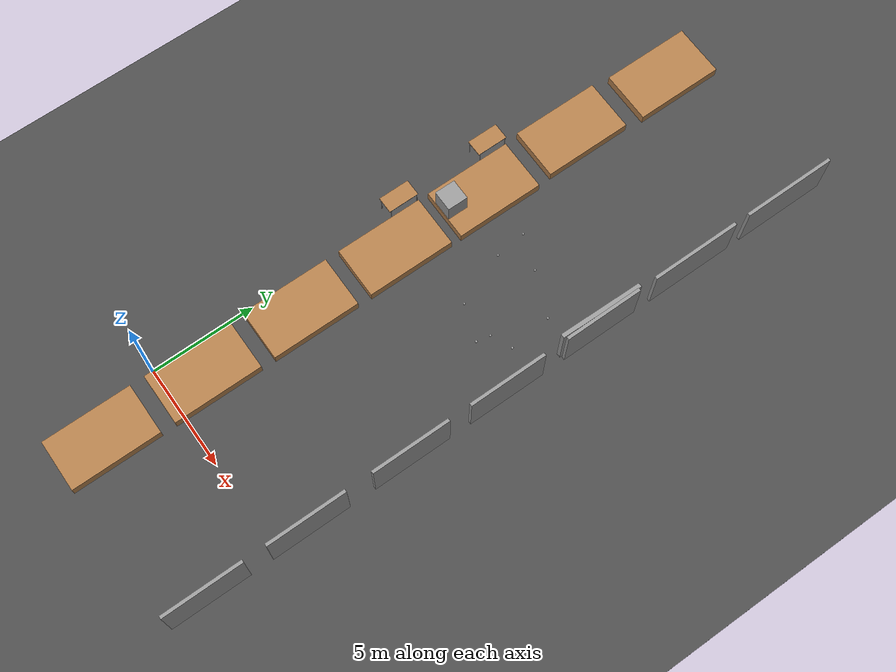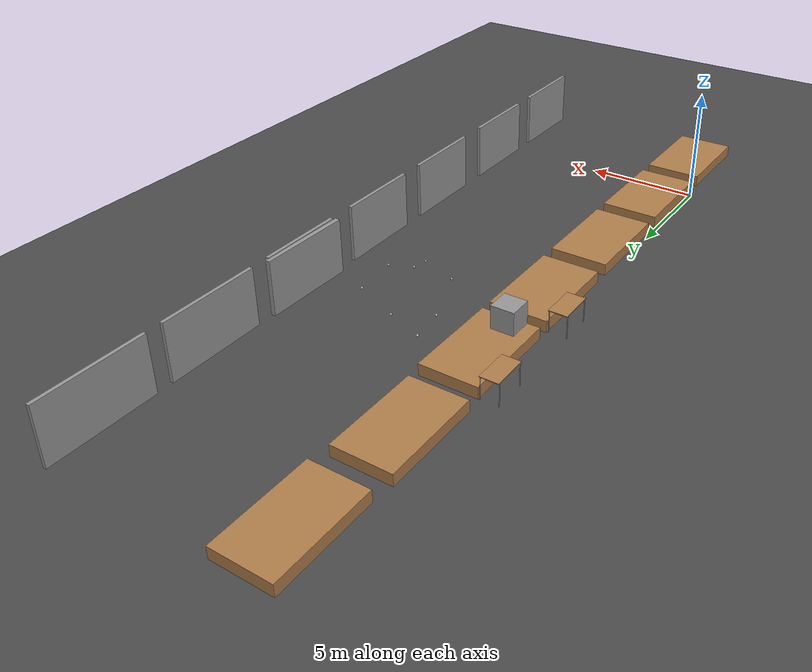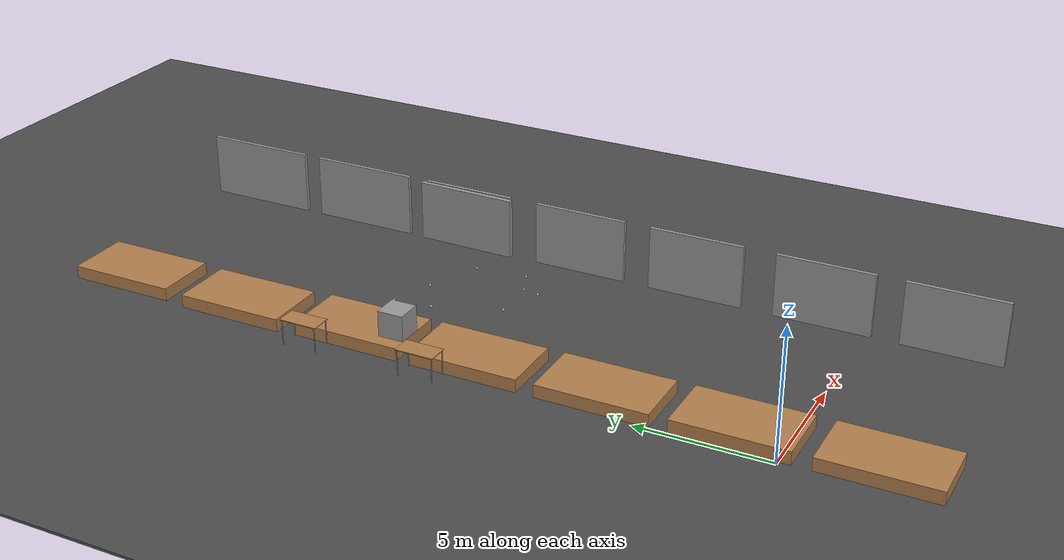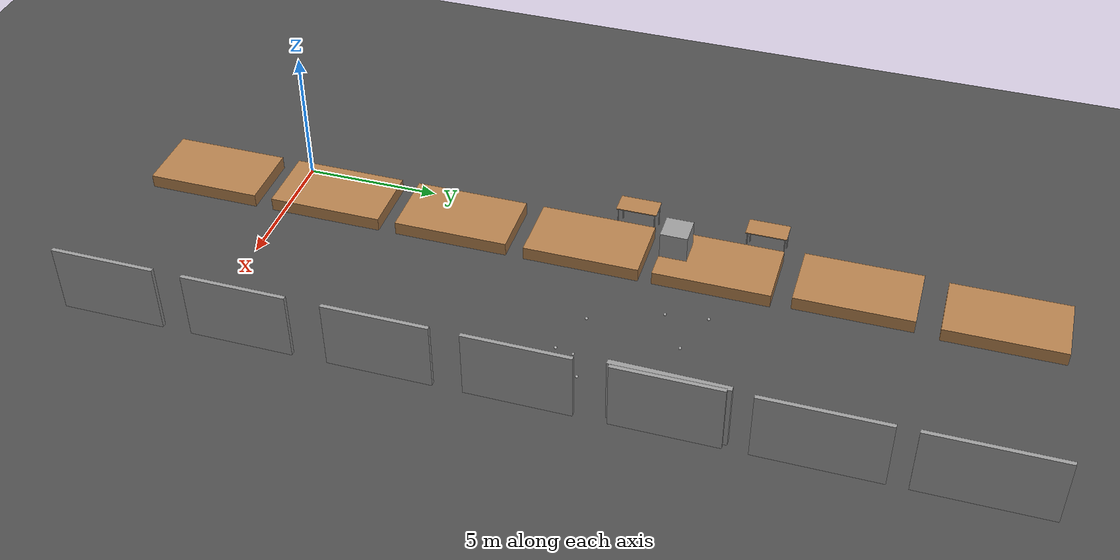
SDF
<sdf version="1.6">
 <world name="default">
  <model name="table_clone_clone_1">
   <static>1</static>
   <link name="link">
    <collision name="surface">
     <pose>0 0 1 0 -0 0</pose>
     <geometry><box><size>1.5 0.8 0.03</size></box></geometry>
     <surface><friction><ode><mu>0.6</mu><mu2>0.6</mu2></ode></friction></surface>
    </collision>
    <visual name="visual1">
     <pose>0 0 1 0 -0 0</pose>
     <geometry><box><size>1.5 0.8 0.03</size></box></geometry>
     <material>
      <script><uri>file://media/materials/scripts/gazebo.material</uri><name>Gazebo/Wood</name></script>
     </material>
    </visual>
    <collision name="front_left_leg">
     <pose>0.68 0.38 0.5 0 -0 0</pose>
     <geometry><cylinder><radius>0.02</radius><length>1</length></cylinder></geometry>
    </collision>
    <visual name="front_left_leg">
     <pose>0.68 0.38 0.5 0 -0 0</pose>
     <geometry><cylinder><radius>0.02</radius><length>1</length></cylinder></geometry>
     <material>
      <script><uri>file://media/materials/scripts/gazebo.material</uri><name>Gazebo/Grey</name></script>
     </material>
    </visual>
    <collision name="front_right_leg">
     <pose>0.68 -0.38 0.5 0 -0 0</pose>
     <geometry><cylinder><radius>0.02</radius><length>1</length></cylinder></geometry>
    </collision>
    <visual name="front_right_leg">
     <pose>0.68 -0.38 0.5 0 -0 0</pose>
     <geometry><cylinder><radius>0.02</radius><length>1</length></cylinder></geometry>
     <material>
      <script><uri>file://media/materials/scripts/gazebo.material</uri><name>Gazebo/Grey</name></script>
     </material>
    </visual>
    <collision name="back_right_leg">
     <pose>-0.68 -0.38 0.5 0 -0 0</pose>
     <geometry><cylinder><radius>0.02</radius><length>1</length></cylinder></geometry>
    </collision>
    <visual name="back_right_leg">
     <pose>-0.68 -0.38 0.5 0 -0 0</pose>
     <geometry><cylinder><radius>0.02</radius><length>1</length></cylinder></geometry>
     <material>
      <script><uri>file://media/materials/scripts/gazebo.material</uri><name>Gazebo/Grey</name></script>
     </material>
    </visual>
    <collision name="back_left_leg">
     <pose>-0.68 0.38 0.5 0 -0 0</pose>
     <geometry><cylinder><radius>0.02</radius><length>1</length></cylinder></geometry>
    </collision>
    <visual name="back_left_leg">
     <pose>-0.68 0.38 0.5 0 -0 0</pose>
     <geometry><cylinder><radius>0.02</radius><length>1</length></cylinder></geometry>
     <material>
      <script><uri>file://media/materials/scripts/gazebo.material</uri><name>Gazebo/Grey</name></script>
     </material>
    </visual>
   </link>
   <pose>-0.283344 12.903 0 0 0 -1.56764</pose>
  </model>
  <model name="table_clone_clone_2">
   <static>1</static>
   <link name="link">
    <collision name="surface">
     <pose>0 0 1 0 -0 0</pose>
     <geometry><box><size>1.5 0.8 0.03</size></box></geometry>
     <surface><friction><ode><mu>0.6</mu><mu2>0.6</mu2></ode></friction></surface>
    </collision>
    <visual name="visual1">
     <pose>0 0 1 0 -0 0</pose>
     <geometry><box><size>1.5 0.8 0.03</size></box></geometry>
     <material>
      <script><uri>file://media/materials/scripts/gazebo.material</uri><name>Gazebo/Wood</name></script>
     </material>
    </visual>
    <collision name="front_left_leg">
     <pose>0.68 0.38 0.5 0 -0 0</pose>
     <geometry><cylinder><radius>0.02</radius><length>1</length></cylinder></geometry>
    </collision>
    <visual name="front_left_leg">
     <pose>0.68 0.38 0.5 0 -0 0</pose>
     <geometry><cylinder><radius>0.02</radius><length>1</length></cylinder></geometry>
     <material>
      <script><uri>file://media/materials/scripts/gazebo.material</uri><name>Gazebo/Grey</name></script>
     </material>
    </visual>
    <collision name="front_right_leg">
     <pose>0.68 -0.38 0.5 0 -0 0</pose>
     <geometry><cylinder><radius>0.02</radius><length>1</length></cylinder></geometry>
    </collision>
    <visual name="front_right_leg">
     <pose>0.68 -0.38 0.5 0 -0 0</pose>
     <geometry><cylinder><radius>0.02</radius><length>1</length></cylinder></geometry>
     <material>
      <script><uri>file://media/materials/scripts/gazebo.material</uri><name>Gazebo/Grey</name></script>
     </material>
    </visual>
    <collision name="back_right_leg">
     <pose>-0.68 -0.38 0.5 0 -0 0</pose>
     <geometry><cylinder><radius>0.02</radius><length>1</length></cylinder></geometry>
    </collision>
    <visual name="back_right_leg">
     <pose>-0.68 -0.38 0.5 0 -0 0</pose>
     <geometry><cylinder><radius>0.02</radius><length>1</length></cylinder></geometry>
     <material>
      <script><uri>file://media/materials/scripts/gazebo.material</uri><name>Gazebo/Grey</name></script>
     </material>
    </visual>
    <collision name="back_left_leg">
     <pose>-0.68 0.38 0.5 0 -0 0</pose>
     <geometry><cylinder><radius>0.02</radius><length>1</length></cylinder></geometry>
    </collision>
    <visual name="back_left_leg">
     <pose>-0.68 0.38 0.5 0 -0 0</pose>
     <geometry><cylinder><radius>0.02</radius><length>1</length></cylinder></geometry>
     <material>
      <script><uri>file://media/materials/scripts/gazebo.material</uri><name>Gazebo/Grey</name></script>
     </material>
    </visual>
   </link>
   <pose>-0.282545 17.6818 0 0 0 -1.56764</pose>
  </model>
  <model name="screen">
   <pose>9.6 11.7963 0 0 -0 0</pose>
   <link name="Wall_0">
    <collision name="Wall_0_Collision">
     <geometry><box><size>3.75 0.15 2.5</size></box></geometry>
     <pose>0 0 1.25 0 -0 0</pose>
    </collision>
    <visual name="Wall_0_Visual">
     <pose>0 0 1.25 0 -0 0</pose>
     <geometry><box><size>3.75 0.15 2.5</size></box></geometry>
     <material>
      <script><uri>file://media/materials/scripts/gazebo.material</uri><name>Gazebo/Grey</name></script>
      <ambient>1 1 1 1</ambient>
     </material>
     <meta><layer>0</layer></meta>
    </visual>
    <pose>0 -14.926 0 0 -0 -1.5708</pose>
   </link>
   <link name="Wall_11">
    <collision name="Wall_11_Collision">
     <geometry><box><size>4.3 0.15 2.5</size></box></geometry>
     <pose>0 0 1.25 0 -0 0</pose>
    </collision>
    <visual name="Wall_11_Visual">
     <pose>0 0 1.25 0 -0 0</pose>
     <geometry><box><size>4.3 0.15 2.5</size></box></geometry>
     <material>
      <script><uri>file://media/materials/scripts/gazebo.material</uri><name>Gazebo/Grey</name></script>
      <ambient>1 1 1 1</ambient>
     </material>
     <meta><layer>0</layer></meta>
    </visual>
    <pose>0 9.451 0 0 -0 1.5708</pose>
   </link>
   <link name="Wall_13">
    <collision name="Wall_13_Collision">
     <geometry><box><size>4.5 0.15 2.5</size></box></geometry>
     <pose>0 0 1.25 0 -0 0</pose>
    </collision>
    <visual name="Wall_13_Visual">
     <pose>0 0 1.25 0 -0 0</pose>
     <geometry><box><size>4.5 0.15 2.5</size></box></geometry>
     <material>
      <script><uri>file://media/materials/scripts/gazebo.material</uri><name>Gazebo/Grey</name></script>
      <ambient>1 1 1 1</ambient>
     </material>
     <meta><layer>0</layer></meta>
    </visual>
    <pose>0 14.551 0 0 -0 1.5708</pose>
   </link>
   <link name="Wall_2">
    <collision name="Wall_2_Collision">
     <geometry><box><size>3.75 0.15 2.5</size></box></geometry>
     <pose>0 0 1.25 0 -0 0</pose>
    </collision>
    <visual name="Wall_2_Visual">
     <pose>0 0 1.25 0 -0 0</pose>
     <geometry><box><size>3.75 0.15 2.5</size></box></geometry>
     <material>
      <script><uri>file://media/materials/scripts/gazebo.material</uri><name>Gazebo/Grey</name></script>
      <ambient>1 1 1 1</ambient>
     </material>
     <meta><layer>0</layer></meta>
    </visual>
    <pose>0 -10.129 0 0 -0 -1.5708</pose>
   </link>
   <link name="Wall_4">
    <collision name="Wall_4_Collision">
     <geometry><box><size>3.75 0.15 2.5</size></box></geometry>
     <pose>0 0 1.25 0 -0 0</pose>
    </collision>
    <visual name="Wall_4_Visual">
     <pose>0 0 1.25 0 -0 0</pose>
     <geometry><box><size>3.75 0.15 2.5</size></box></geometry>
     <material>
      <script><uri>file://media/materials/scripts/gazebo.material</uri><name>Gazebo/Grey</name></script>
      <ambient>1 1 1 1</ambient>
     </material>
     <meta><layer>0</layer></meta>
    </visual>
    <pose>0 -5.126 0 0 -0 1.5708</pose>
   </link>
   <link name="Wall_6">
    <collision name="Wall_6_Collision">
     <geometry><box><size>3.75 0.15 2.5</size></box></geometry>
     <pose>0 0 1.25 0 -0 0</pose>
    </collision>
    <visual name="Wall_6_Visual">
     <pose>0 0 1.25 0 -0 0</pose>
     <geometry><box><size>3.75 0.15 2.5</size></box></geometry>
     <material>
      <script><uri>file://media/materials/scripts/gazebo.material</uri><name>Gazebo/Grey</name></script>
      <ambient>1 1 1 1</ambient>
     </material>
     <meta><layer>0</layer></meta>
    </visual>
    <pose>0 -0.324 0 0 -0 1.5708</pose>
   </link>
   <link name="Wall_9">
    <collision name="Wall_9_Collision">
     <geometry><box><size>3.75 0.15 2.5</size></box></geometry>
     <pose>0 0 1.25 0 -0 0</pose>
    </collision>
    <visual name="Wall_9_Visual">
     <pose>0 0 1.25 0 -0 0</pose>
     <geometry><box><size>3.75 0.15 2.5</size></box></geometry>
     <material>
      <script><uri>file://media/materials/scripts/gazebo.material</uri><name>Gazebo/Grey</name></script>
      <ambient>1 1 1 1</ambient>
     </material>
     <meta><layer>0</layer></meta>
    </visual>
    <pose>0 4.576 0 0 -0 1.5708</pose>
   </link>
   <static>1</static>
  </model>
  <model name="grey_wall_clone_0">
   <static>1</static>
   <link name="link">
    <pose>0 0 1.4 0 -0 0</pose>
    <collision name="collision"><geometry><box><size>4 0.2 2.4</size></box></geometry></collision>
    <visual name="visual">
     <cast_shadows>0</cast_shadows>
     <geometry><box><size>4 0.2 2.4</size></box></geometry>
     <material>
      <script>
       <uri>model://grey_wall/materials/scripts</uri>
       <uri>model://grey_wall/materials/textures</uri>
       <name>vrc/grey_wall</name>
      </script>
     </material>
    </visual>
   </link>
   <pose>9.4203 16.393 -0.13155 0 0 -1.58718</pose>
  </model>
  <model name="unit_box_3">
   <pose>1.18793 14.6668 1 0 -0 0.000345</pose>
   <link name="link">
    <inertial>
     <mass>1</mass>
     <inertia>
      <ixx>0.166667</ixx>
      <ixy>0</ixy>
      <ixz>0</ixz>
      <iyy>0.166667</iyy>
      <iyz>0</iyz>
      <izz>0.166667</izz>
     </inertia>
    </inertial>
    <collision name="collision"><geometry><box><size>1 1 1</size></box></geometry></collision>
    <visual name="visual">
     <geometry><box><size>1 1 1</size></box></geometry>
     <material>
      <script><name>Gazebo/Grey</name><uri>file://media/materials/scripts/gazebo.material</uri></script>
     </material>
    </visual>
   </link>
  </model>
  <model name="cut_floor_wood">
   <pose>1.33828 11.5505 0 0 -0 0</pose>
   <link name="Wall_0">
    <collision name="Wall_0_Collision">
     <geometry><box><size>4.25 2.5 0.5</size></box></geometry>
     <pose>0 0 0.25 0 -0 0</pose>
    </collision>
    <visual name="Wall_0_Visual">
     <pose>0 0 0.25 0 -0 0</pose>
     <geometry><box><size>4.25 2.5 0.5</size></box></geometry>
     <material>
      <script><uri>file://media/materials/scripts/gazebo.material</uri><name>Gazebo/Wood</name></script>
      <ambient>1 1 1 1</ambient>
     </material>
     <meta><layer>0</layer></meta>
    </visual>
    <pose>0.0645 -14.794 0 0 -0 1.5708</pose>
   </link>
   <link name="Wall_10">
    <collision name="Wall_10_Collision">
     <geometry><box><size>4.25 2.5 0.5</size></box></geometry>
     <pose>0 0 0.25 0 -0 0</pose>
    </collision>
    <visual name="Wall_10_Visual">
     <pose>0 0 0.25 0 -0 0</pose>
     <geometry><box><size>4.25 2.5 0.5</size></box></geometry>
     <material>
      <script><uri>file://media/materials/scripts/gazebo.material</uri><name>Gazebo/Wood</name></script>
      <ambient>1 1 1 1</ambient>
     </material>
     <meta><layer>0</layer></meta>
    </visual>
    <pose>-0.0645 9.688 0 0 -0 1.5708</pose>
   </link>
   <link name="Wall_12">
    <collision name="Wall_12_Collision">
     <geometry><box><size>4.25 2.5 0.5</size></box></geometry>
     <pose>0 0 0.25 0 -0 0</pose>
    </collision>
    <visual name="Wall_12_Visual">
     <pose>0 0 0.25 0 -0 0</pose>
     <geometry><box><size>4.25 2.5 0.5</size></box></geometry>
     <material>
      <script><uri>file://media/materials/scripts/gazebo.material</uri><name>Gazebo/Wood</name></script>
      <ambient>1 1 1 1</ambient>
     </material>
     <meta><layer>0</layer></meta>
    </visual>
    <pose>0.0645 14.794 0 0 -0 1.5708</pose>
   </link>
   <link name="Wall_2">
    <collision name="Wall_2_Collision">
     <geometry><box><size>4.25 2.5 0.5</size></box></geometry>
     <pose>0 0 0.25 0 -0 0</pose>
    </collision>
    <visual name="Wall_2_Visual">
     <pose>0 0 0.25 0 -0 0</pose>
     <geometry><box><size>4.25 2.5 0.5</size></box></geometry>
     <material>
      <script><uri>file://media/materials/scripts/gazebo.material</uri><name>Gazebo/Wood</name></script>
      <ambient>1 1 1 1</ambient>
     </material>
     <meta><layer>0</layer></meta>
    </visual>
    <pose>0.0645 -9.862 0 0 -0 1.5708</pose>
   </link>
   <link name="Wall_4">
    <collision name="Wall_4_Collision">
     <geometry><box><size>4.25 2.5 0.5</size></box></geometry>
     <pose>0 0 0.25 0 -0 0</pose>
    </collision>
    <visual name="Wall_4_Visual">
     <pose>0 0 0.25 0 -0 0</pose>
     <geometry><box><size>4.25 2.5 0.5</size></box></geometry>
     <material>
      <script><uri>file://media/materials/scripts/gazebo.material</uri><name>Gazebo/Wood</name></script>
      <ambient>1 1 1 1</ambient>
     </material>
     <meta><layer>0</layer></meta>
    </visual>
    <pose>0.0645 -4.945 0 0 -0 1.5708</pose>
   </link>
   <link name="Wall_6">
    <collision name="Wall_6_Collision">
     <geometry><box><size>4.25 2.5 0.5</size></box></geometry>
     <pose>0 0 0.25 0 -0 0</pose>
    </collision>
    <visual name="Wall_6_Visual">
     <pose>0 0 0.25 0 -0 0</pose>
     <geometry><box><size>4.25 2.5 0.5</size></box></geometry>
     <material>
      <script><uri>file://media/materials/scripts/gazebo.material</uri><name>Gazebo/Wood</name></script>
      <ambient>1 1 1 1</ambient>
     </material>
     <meta><layer>0</layer></meta>
    </visual>
    <pose>0.0645 -0.027 0 0 -0 1.5708</pose>
   </link>
   <link name="Wall_8">
    <collision name="Wall_8_Collision">
     <geometry><box><size>4.25 2.5 0.5</size></box></geometry>
     <pose>0 0 0.25 0 -0 0</pose>
    </collision>
    <visual name="Wall_8_Visual">
     <pose>0 0 0.25 0 -0 0</pose>
     <geometry><box><size>4.25 2.5 0.5</size></box></geometry>
     <material>
      <script><uri>file://media/materials/scripts/gazebo.material</uri><name>Gazebo/Wood</name></script>
      <ambient>1 1 1 1</ambient>
     </material>
     <meta><layer>0</layer></meta>
    </visual>
    <pose>0.0645 4.72 0 0 -0 1.5708</pose>
   </link>
   <static>1</static>
  </model>
  <model name="frc2016_ball_clone_0">
   <pose>7.7929 15.0352 0.0998 0 -0 0</pose>
   <link name="link">
    <inertial>
     <mass>0.213</mass>
     <inertia>
      <ixx>0.00322667</ixx>
      <ixy>0</ixy>
      <ixz>0</ixz>
      <iyy>0.00322667</iyy>
      <iyz>0</iyz>
      <izz>0.00322667</izz>
     </inertia>
    </inertial>
    <visual name="visual"><geometry><sphere><radius>0.0506132</radius></sphere></geometry></visual>
    <collision name="collision">
     <geometry><sphere><radius>0.0506132</radius></sphere></geometry>
     <surface>
      <bounce><restitution_coefficient>0.15937</restitution_coefficient><threshold>0</threshold></bounce>
      <contact><ode><max_vel>100</max_vel><min_depth>0.001</min_depth></ode></contact>
     </surface>
    </collision>
   </link>
  </model>
  <model name="frc2016_ball_clone_4_clone_37">
   <pose>6.87322 11.921 0.0998 0 -0 0</pose>
   <link name="link">
    <inertial>
     <mass>0.213</mass>
     <inertia>
      <ixx>0.00322667</ixx>
      <ixy>0</ixy>
      <ixz>0</ixz>
      <iyy>0.00322667</iyy>
      <iyz>0</iyz>
      <izz>0.00322667</izz>
     </inertia>
    </inertial>
    <visual name="visual"><geometry><sphere><radius>0.0506132</radius></sphere></geometry></visual>
    <collision name="collision">
     <geometry><sphere><radius>0.0506132</radius></sphere></geometry>
     <surface>
      <bounce><restitution_coefficient>0.15937</restitution_coefficient><threshold>0</threshold></bounce>
      <contact><ode><max_vel>100</max_vel><min_depth>0.001</min_depth></ode></contact>
     </surface>
    </collision>
   </link>
  </model>
  <model name="frc2016_ball_clone_4_clone_38">
   <pose>8 13 0.0998 0 -0 0</pose>
   <link name="link">
    <inertial>
     <mass>0.213</mass>
     <inertia>
      <ixx>0.00322667</ixx>
      <ixy>0</ixy>
      <ixz>0</ixz>
      <iyy>0.00322667</iyy>
      <iyz>0</iyz>
      <izz>0.00322667</izz>
     </inertia>
    </inertial>
    <visual name="visual"><geometry><sphere><radius>0.0506132</radius></sphere></geometry></visual>
    <collision name="collision">
     <geometry><sphere><radius>0.0506132</radius></sphere></geometry>
     <surface>
      <bounce><restitution_coefficient>0.15937</restitution_coefficient><threshold>0</threshold></bounce>
      <contact><ode><max_vel>100</max_vel><min_depth>0.001</min_depth></ode></contact>
     </surface>
    </collision>
   </link>
  </model>
  <model name="frc2016_ball_clone_4_clone_41">
   <pose>5.17462 12.5101 0.0998 0 -0 0</pose>
   <link name="link">
    <inertial>
     <mass>0.213</mass>
     <inertia>
      <ixx>0.00322667</ixx>
      <ixy>0</ixy>
      <ixz>0</ixz>
      <iyy>0.00322667</iyy>
      <iyz>0</iyz>
      <izz>0.00322667</izz>
     </inertia>
    </inertial>
    <visual name="visual"><geometry><sphere><radius>0.0506132</radius></sphere></geometry></visual>
    <collision name="collision">
     <geometry><sphere><radius>0.0506132</radius></sphere></geometry>
     <surface>
      <bounce><restitution_coefficient>0.15937</restitution_coefficient><threshold>0</threshold></bounce>
      <contact><ode><max_vel>100</max_vel><min_depth>0.001</min_depth></ode></contact>
     </surface>
    </collision>
   </link>
  </model>
  <model name="frc2016_ball_clone_4_clone_42">
   <pose>7 12.5712 0.0998 0 -0 0</pose>
   <link name="link">
    <inertial>
     <mass>0.213</mass>
     <inertia>
      <ixx>0.00322667</ixx>
      <ixy>0</ixy>
      <ixz>0</ixz>
      <iyy>0.00322667</iyy>
      <iyz>0</iyz>
      <izz>0.00322667</izz>
     </inertia>
    </inertial>
    <visual name="visual"><geometry><sphere><radius>0.0506132</radius></sphere></geometry></visual>
    <collision name="collision">
     <geometry><sphere><radius>0.0506132</radius></sphere></geometry>
     <surface>
      <bounce><restitution_coefficient>0.15937</restitution_coefficient><threshold>0</threshold></bounce>
      <contact><ode><max_vel>100</max_vel><min_depth>0.001</min_depth></ode></contact>
     </surface>
    </collision>
   </link>
  </model>
  <model name="frc2016_ball_clone_4_clone_63">
   <pose>4 16.5361 0.099668 0 -0 0</pose>
   <link name="link">
    <inertial>
     <mass>0.213</mass>
     <inertia>
      <ixx>0.00322667</ixx>
      <ixy>0</ixy>
      <ixz>0</ixz>
      <iyy>0.00322667</iyy>
      <iyz>0</iyz>
      <izz>0.00322667</izz>
     </inertia>
    </inertial>
    <visual name="visual"><geometry><sphere><radius>0.0506132</radius></sphere></geometry></visual>
    <collision name="collision">
     <geometry><sphere><radius>0.0506132</radius></sphere></geometry>
     <surface>
      <bounce><restitution_coefficient>0.15937</restitution_coefficient><threshold>0</threshold></bounce>
      <contact><ode><max_vel>100</max_vel><min_depth>0.001</min_depth></ode></contact>
     </surface>
    </collision>
   </link>
  </model>
  <model name="frc2016_ball_clone_4_clone_64">
   <pose>4.18477 15.0357 0.0998 0 -0 0</pose>
   <link name="link">
    <inertial>
     <mass>0.213</mass>
     <inertia>
      <ixx>0.00322667</ixx>
      <ixy>0</ixy>
      <ixz>0</ixz>
      <iyy>0.00322667</iyy>
      <iyz>0</iyz>
      <izz>0.00322667</izz>
     </inertia>
    </inertial>
    <visual name="visual"><geometry><sphere><radius>0.0506132</radius></sphere></geometry></visual>
    <collision name="collision">
     <geometry><sphere><radius>0.0506132</radius></sphere></geometry>
     <surface>
      <bounce><restitution_coefficient>0.15937</restitution_coefficient><threshold>0</threshold></bounce>
      <contact><ode><max_vel>100</max_vel><min_depth>0.001</min_depth></ode></contact>
     </surface>
    </collision>
   </link>
  </model>
  <model name="frc2016_ball_clone_4_clone_65">
   <pose>5.68433 15.9326 0.099843 0 -0 0</pose>
   <link name="link">
    <inertial>
     <mass>0.213</mass>
     <inertia>
      <ixx>0.00322667</ixx>
      <ixy>0</ixy>
      <ixz>0</ixz>
      <iyy>0.00322667</iyy>
      <iyz>0</iyz>
      <izz>0.00322667</izz>
     </inertia>
    </inertial>
    <visual name="visual"><geometry><sphere><radius>0.0506132</radius></sphere></geometry></visual>
    <collision name="collision">
     <geometry><sphere><radius>0.0506132</radius></sphere></geometry>
     <surface>
      <bounce><restitution_coefficient>0.15937</restitution_coefficient><threshold>0</threshold></bounce>
      <contact><ode><max_vel>100</max_vel><min_depth>0.001</min_depth></ode></contact>
     </surface>
    </collision>
   </link>
  </model>
  <model name="asphalt_plane">
   <static>1</static>
   <link name="link">
    <collision name="collision"><geometry><box><size>1231.34 219.833 0.1</size></box></geometry></collision>
    <visual name="visual">
     <cast_shadows>0</cast_shadows>
     <geometry><box><size>1231.34 219.833 0.1</size></box></geometry>
     <material>
      <script>
       <uri>model://asphalt_plane/materials/scripts</uri>
       <uri>model://asphalt_plane/materials/textures</uri>
       <name>vrc/asphalt</name>
      </script>
     </material>
    </visual>
   </link>
   <pose>-29.4694 28.4475 -0.062447 0 -0 0</pose>
  </model>
 </world>
</sdf>
